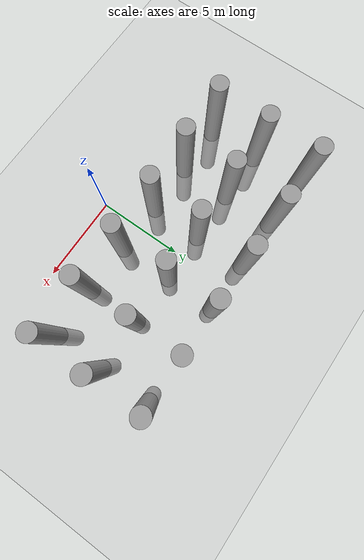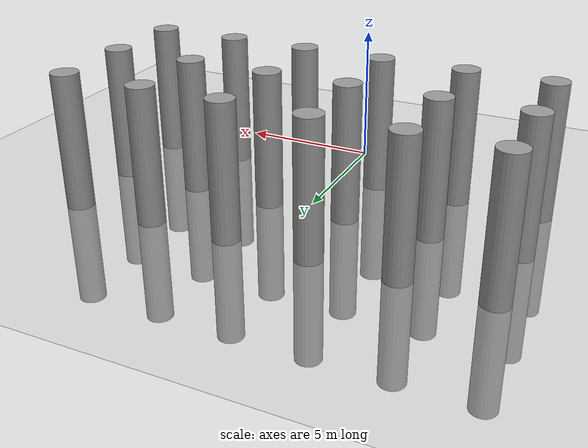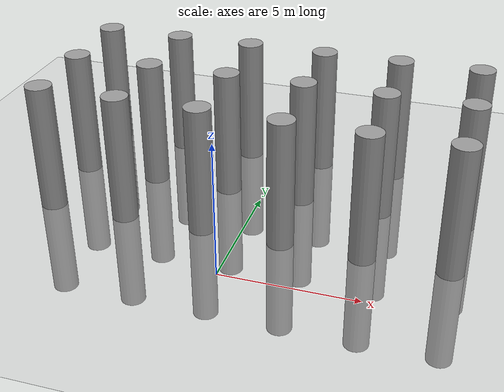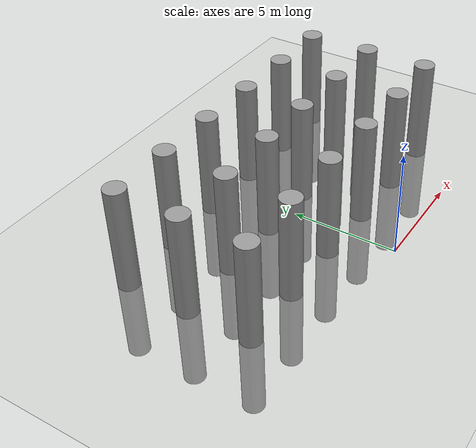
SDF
<sdf version="1.7">
 <world name="default">
  <light name="sun" type="directional">
   <pose>0 0 10 0 -0 0</pose>
   <diffuse>0.8 0.8 0.8 1</diffuse>
   <specular>0.2 0.2 0.2 1</specular>
   <attenuation>
    <range>1000</range>
    <constant>0.9</constant>
    <linear>0.01</linear>
    <quadratic>0.001</quadratic>
   </attenuation>
   <direction>-0.5 0.1 -0.9</direction>
   <spot><inner_angle>0</inner_angle><outer_angle>0</outer_angle><falloff>0</falloff></spot>
  </light>
  <model name="ground_plane">
   <static>1</static>
   <link name="link">
    <collision name="collision">
     <geometry><plane><normal>0 0 1</normal><size>100 100</size></plane></geometry>
     <surface><friction><ode><mu>100</mu><mu2>50</mu2></ode></friction></surface>
    </collision>
    <visual name="visual">
     <cast_shadows>0</cast_shadows>
     <geometry><plane><normal>0 0 1</normal><size>100 100</size></plane></geometry>
     <material>
      <script><uri>file://media/materials/scripts/gazebo.material</uri><name>Gazebo/Grey</name></script>
     </material>
    </visual>
   </link>
  </model>
  <gravity>0 0 -9.8</gravity>
  <magnetic_field>6e-06 2.3e-05 -4.2e-05</magnetic_field>
  <atmosphere type="adiabatic"/>
  <physics type="ode">
   <max_step_size>0.001</max_step_size>
   <real_time_factor>1</real_time_factor>
   <real_time_update_rate>1000</real_time_update_rate>
  </physics>
  <scene><ambient>0.4 0.4 0.4 1</ambient><background>0.7 0.7 0.7 1</background><shadows>1</shadows></scene>
  <spherical_coordinates>
   <surface_model>EARTH_WGS84</surface_model>
   <latitude_deg>0</latitude_deg>
   <longitude_deg>0</longitude_deg>
   <elevation>0</elevation>
   <heading_deg>0</heading_deg>
  </spherical_coordinates>
  <model name="unit_cylinder">
   <link name="link">
    <inertial>
     <mass>8.46118</mass>
     <inertia><ixx>55.4464</ixx><ixy>0</ixy><ixz>0</ixz><iyy>55.4464</iyy><iyz>0</iyz><izz>1.0138</izz></inertia>
    </inertial>
    <visual name="visual">
     <geometry><cylinder><radius>0.489525</radius><length>8.82709</length></cylinder></geometry>
     <material>
      <script><name>Gazebo/Grey</name><uri>file://media/materials/scripts/gazebo.material</uri></script>
      <shader type="pixel"/>
     </material>
    </visual>
    <collision name="collision">
     <geometry><cylinder><radius>0.489525</radius><length>8.82709</length></cylinder></geometry>
     <surface>
      <friction>
       <ode><mu>1</mu><mu2>1</mu2><fdir1>0 0 0</fdir1><slip1>0</slip1><slip2>0</slip2></ode>
       <torsional>
        <coefficient>1</coefficient>
        <patch_radius>0</patch_radius>
        <surface_radius>0</surface_radius>
        <use_patch_radius>1</use_patch_radius>
        <ode><slip>0</slip></ode>
       </torsional>
      </friction>
      <bounce><restitution_coefficient>0</restitution_coefficient><threshold>1e+06</threshold></bounce>
      <contact>
       <collide_without_contact>0</collide_without_contact>
       <collide_without_contact_bitmask>1</collide_without_contact_bitmask>
       <collide_bitmask>1</collide_bitmask>
       <ode>
        <soft_cfm>0</soft_cfm>
        <soft_erp>0.2</soft_erp>
        <kp>1e+13</kp>
        <kd>1</kd>
        <max_vel>0.01</max_vel>
        <min_depth>0</min_depth>
       </ode>
       <bullet>
        <split_impulse>1</split_impulse>
        <split_impulse_penetration_threshold>-0.01</split_impulse_penetration_threshold>
        <soft_cfm>0</soft_cfm>
        <soft_erp>0.2</soft_erp>
        <kp>1e+13</kp>
        <kd>1</kd>
       </bullet>
      </contact>
     </surface>
    </collision>
   </link>
   <static>0</static>
   <pose>1.52088 2.46642 0.499993 -3e-06 -4e-06 -0</pose>
  </model>
  <model name="unit_cylinder_clone">
   <link name="link">
    <inertial>
     <mass>8.46118</mass>
     <inertia><ixx>55.4464</ixx><ixy>0</ixy><ixz>0</ixz><iyy>55.4464</iyy><iyz>0</iyz><izz>1.0138</izz></inertia>
    </inertial>
    <visual name="visual">
     <geometry><cylinder><radius>0.489525</radius><length>8.82709</length></cylinder></geometry>
     <material>
      <script><name>Gazebo/Grey</name><uri>file://media/materials/scripts/gazebo.material</uri></script>
      <shader type="pixel"/>
     </material>
    </visual>
    <collision name="collision">
     <geometry><cylinder><radius>0.489525</radius><length>8.82709</length></cylinder></geometry>
     <surface>
      <friction>
       <ode><mu>1</mu><mu2>1</mu2><fdir1>0 0 0</fdir1><slip1>0</slip1><slip2>0</slip2></ode>
       <torsional>
        <coefficient>1</coefficient>
        <patch_radius>0</patch_radius>
        <surface_radius>0</surface_radius>
        <use_patch_radius>1</use_patch_radius>
        <ode><slip>0</slip></ode>
       </torsional>
      </friction>
      <bounce><restitution_coefficient>0</restitution_coefficient><threshold>1e+06</threshold></bounce>
      <contact>
       <collide_without_contact>0</collide_without_contact>
       <collide_without_contact_bitmask>1</collide_without_contact_bitmask>
       <collide_bitmask>1</collide_bitmask>
       <ode>
        <soft_cfm>0</soft_cfm>
        <soft_erp>0.2</soft_erp>
        <kp>1e+13</kp>
        <kd>1</kd>
        <max_vel>0.01</max_vel>
        <min_depth>0</min_depth>
       </ode>
       <bullet>
        <split_impulse>1</split_impulse>
        <split_impulse_penetration_threshold>-0.01</split_impulse_penetration_threshold>
        <soft_cfm>0</soft_cfm>
        <soft_erp>0.2</soft_erp>
        <kp>1e+13</kp>
        <kd>1</kd>
       </bullet>
      </contact>
     </surface>
    </collision>
   </link>
   <static>0</static>
   <pose>4.49638 2.43032 0.499993 -3e-06 -4e-06 -0</pose>
  </model>
  <model name="unit_cylinder_clone_0">
   <link name="link">
    <inertial>
     <mass>8.46118</mass>
     <inertia><ixx>55.4464</ixx><ixy>0</ixy><ixz>0</ixz><iyy>55.4464</iyy><iyz>0</iyz><izz>1.0138</izz></inertia>
    </inertial>
    <visual name="visual">
     <geometry><cylinder><radius>0.489525</radius><length>8.82709</length></cylinder></geometry>
     <material>
      <script><name>Gazebo/Grey</name><uri>file://media/materials/scripts/gazebo.material</uri></script>
      <shader type="pixel"/>
     </material>
    </visual>
    <collision name="collision">
     <geometry><cylinder><radius>0.489525</radius><length>8.82709</length></cylinder></geometry>
     <surface>
      <friction>
       <ode><mu>1</mu><mu2>1</mu2><fdir1>0 0 0</fdir1><slip1>0</slip1><slip2>0</slip2></ode>
       <torsional>
        <coefficient>1</coefficient>
        <patch_radius>0</patch_radius>
        <surface_radius>0</surface_radius>
        <use_patch_radius>1</use_patch_radius>
        <ode><slip>0</slip></ode>
       </torsional>
      </friction>
      <bounce><restitution_coefficient>0</restitution_coefficient><threshold>1e+06</threshold></bounce>
      <contact>
       <collide_without_contact>0</collide_without_contact>
       <collide_without_contact_bitmask>1</collide_without_contact_bitmask>
       <collide_bitmask>1</collide_bitmask>
       <ode>
        <soft_cfm>0</soft_cfm>
        <soft_erp>0.2</soft_erp>
        <kp>1e+13</kp>
        <kd>1</kd>
        <max_vel>0.01</max_vel>
        <min_depth>0</min_depth>
       </ode>
       <bullet>
        <split_impulse>1</split_impulse>
        <split_impulse_penetration_threshold>-0.01</split_impulse_penetration_threshold>
        <soft_cfm>0</soft_cfm>
        <soft_erp>0.2</soft_erp>
        <kp>1e+13</kp>
        <kd>1</kd>
       </bullet>
      </contact>
     </surface>
    </collision>
   </link>
   <static>0</static>
   <pose>7.53962 2.48599 0.499993 -3e-06 -4e-06 -0</pose>
  </model>
  <model name="unit_cylinder_clone_1">
   <link name="link">
    <inertial>
     <mass>8.46118</mass>
     <inertia><ixx>55.4464</ixx><ixy>0</ixy><ixz>0</ixz><iyy>55.4464</iyy><iyz>0</iyz><izz>1.0138</izz></inertia>
    </inertial>
    <visual name="visual">
     <geometry><cylinder><radius>0.489525</radius><length>8.82709</length></cylinder></geometry>
     <material>
      <script><name>Gazebo/Grey</name><uri>file://media/materials/scripts/gazebo.material</uri></script>
      <shader type="pixel"/>
     </material>
    </visual>
    <collision name="collision">
     <geometry><cylinder><radius>0.489525</radius><length>8.82709</length></cylinder></geometry>
     <surface>
      <friction>
       <ode><mu>1</mu><mu2>1</mu2><fdir1>0 0 0</fdir1><slip1>0</slip1><slip2>0</slip2></ode>
       <torsional>
        <coefficient>1</coefficient>
        <patch_radius>0</patch_radius>
        <surface_radius>0</surface_radius>
        <use_patch_radius>1</use_patch_radius>
        <ode><slip>0</slip></ode>
       </torsional>
      </friction>
      <bounce><restitution_coefficient>0</restitution_coefficient><threshold>1e+06</threshold></bounce>
      <contact>
       <collide_without_contact>0</collide_without_contact>
       <collide_without_contact_bitmask>1</collide_without_contact_bitmask>
       <collide_bitmask>1</collide_bitmask>
       <ode>
        <soft_cfm>0</soft_cfm>
        <soft_erp>0.2</soft_erp>
        <kp>1e+13</kp>
        <kd>1</kd>
        <max_vel>0.01</max_vel>
        <min_depth>0</min_depth>
       </ode>
       <bullet>
        <split_impulse>1</split_impulse>
        <split_impulse_penetration_threshold>-0.01</split_impulse_penetration_threshold>
        <soft_cfm>0</soft_cfm>
        <soft_erp>0.2</soft_erp>
        <kp>1e+13</kp>
        <kd>1</kd>
       </bullet>
      </contact>
     </surface>
    </collision>
   </link>
   <static>0</static>
   <pose>1.4563 5.56209 0.499993 -3e-06 -4e-06 -0</pose>
  </model>
  <model name="unit_cylinder_clone_2">
   <link name="link">
    <inertial>
     <mass>8.46118</mass>
     <inertia><ixx>55.4464</ixx><ixy>0</ixy><ixz>0</ixz><iyy>55.4464</iyy><iyz>0</iyz><izz>1.0138</izz></inertia>
    </inertial>
    <visual name="visual">
     <geometry><cylinder><radius>0.489525</radius><length>8.82709</length></cylinder></geometry>
     <material>
      <script><name>Gazebo/Grey</name><uri>file://media/materials/scripts/gazebo.material</uri></script>
      <shader type="pixel"/>
     </material>
    </visual>
    <collision name="collision">
     <geometry><cylinder><radius>0.489525</radius><length>8.82709</length></cylinder></geometry>
     <surface>
      <friction>
       <ode><mu>1</mu><mu2>1</mu2><fdir1>0 0 0</fdir1><slip1>0</slip1><slip2>0</slip2></ode>
       <torsional>
        <coefficient>1</coefficient>
        <patch_radius>0</patch_radius>
        <surface_radius>0</surface_radius>
        <use_patch_radius>1</use_patch_radius>
        <ode><slip>0</slip></ode>
       </torsional>
      </friction>
      <bounce><restitution_coefficient>0</restitution_coefficient><threshold>1e+06</threshold></bounce>
      <contact>
       <collide_without_contact>0</collide_without_contact>
       <collide_without_contact_bitmask>1</collide_without_contact_bitmask>
       <collide_bitmask>1</collide_bitmask>
       <ode>
        <soft_cfm>0</soft_cfm>
        <soft_erp>0.2</soft_erp>
        <kp>1e+13</kp>
        <kd>1</kd>
        <max_vel>0.01</max_vel>
        <min_depth>0</min_depth>
       </ode>
       <bullet>
        <split_impulse>1</split_impulse>
        <split_impulse_penetration_threshold>-0.01</split_impulse_penetration_threshold>
        <soft_cfm>0</soft_cfm>
        <soft_erp>0.2</soft_erp>
        <kp>1e+13</kp>
        <kd>1</kd>
       </bullet>
      </contact>
     </surface>
    </collision>
   </link>
   <static>0</static>
   <pose>4.47715 5.53278 0.499993 -3e-06 -4e-06 -0</pose>
  </model>
  <model name="unit_cylinder_clone_3">
   <link name="link">
    <inertial>
     <mass>8.46118</mass>
     <inertia><ixx>55.4464</ixx><ixy>0</ixy><ixz>0</ixz><iyy>55.4464</iyy><iyz>0</iyz><izz>1.0138</izz></inertia>
    </inertial>
    <visual name="visual">
     <geometry><cylinder><radius>0.489525</radius><length>8.82709</length></cylinder></geometry>
     <material>
      <script><name>Gazebo/Grey</name><uri>file://media/materials/scripts/gazebo.material</uri></script>
      <shader type="pixel"/>
     </material>
    </visual>
    <collision name="collision">
     <geometry><cylinder><radius>0.489525</radius><length>8.82709</length></cylinder></geometry>
     <surface>
      <friction>
       <ode><mu>1</mu><mu2>1</mu2><fdir1>0 0 0</fdir1><slip1>0</slip1><slip2>0</slip2></ode>
       <torsional>
        <coefficient>1</coefficient>
        <patch_radius>0</patch_radius>
        <surface_radius>0</surface_radius>
        <use_patch_radius>1</use_patch_radius>
        <ode><slip>0</slip></ode>
       </torsional>
      </friction>
      <bounce><restitution_coefficient>0</restitution_coefficient><threshold>1e+06</threshold></bounce>
      <contact>
       <collide_without_contact>0</collide_without_contact>
       <collide_without_contact_bitmask>1</collide_without_contact_bitmask>
       <collide_bitmask>1</collide_bitmask>
       <ode>
        <soft_cfm>0</soft_cfm>
        <soft_erp>0.2</soft_erp>
        <kp>1e+13</kp>
        <kd>1</kd>
        <max_vel>0.01</max_vel>
        <min_depth>0</min_depth>
       </ode>
       <bullet>
        <split_impulse>1</split_impulse>
        <split_impulse_penetration_threshold>-0.01</split_impulse_penetration_threshold>
        <soft_cfm>0</soft_cfm>
        <soft_erp>0.2</soft_erp>
        <kp>1e+13</kp>
        <kd>1</kd>
       </bullet>
      </contact>
     </surface>
    </collision>
   </link>
   <static>0</static>
   <pose>7.56768 5.51359 0.499993 -3e-06 -4e-06 -0</pose>
  </model>
  <model name="unit_cylinder_clone_4">
   <link name="link">
    <inertial>
     <mass>8.46118</mass>
     <inertia><ixx>55.4464</ixx><ixy>0</ixy><ixz>0</ixz><iyy>55.4464</iyy><iyz>0</iyz><izz>1.0138</izz></inertia>
    </inertial>
    <visual name="visual">
     <geometry><cylinder><radius>0.489525</radius><length>8.82709</length></cylinder></geometry>
     <material>
      <script><name>Gazebo/Grey</name><uri>file://media/materials/scripts/gazebo.material</uri></script>
      <shader type="pixel"/>
     </material>
    </visual>
    <collision name="collision">
     <geometry><cylinder><radius>0.489525</radius><length>8.82709</length></cylinder></geometry>
     <surface>
      <friction>
       <ode><mu>1</mu><mu2>1</mu2><fdir1>0 0 0</fdir1><slip1>0</slip1><slip2>0</slip2></ode>
       <torsional>
        <coefficient>1</coefficient>
        <patch_radius>0</patch_radius>
        <surface_radius>0</surface_radius>
        <use_patch_radius>1</use_patch_radius>
        <ode><slip>0</slip></ode>
       </torsional>
      </friction>
      <bounce><restitution_coefficient>0</restitution_coefficient><threshold>1e+06</threshold></bounce>
      <contact>
       <collide_without_contact>0</collide_without_contact>
       <collide_without_contact_bitmask>1</collide_without_contact_bitmask>
       <collide_bitmask>1</collide_bitmask>
       <ode>
        <soft_cfm>0</soft_cfm>
        <soft_erp>0.2</soft_erp>
        <kp>1e+13</kp>
        <kd>1</kd>
        <max_vel>0.01</max_vel>
        <min_depth>0</min_depth>
       </ode>
       <bullet>
        <split_impulse>1</split_impulse>
        <split_impulse_penetration_threshold>-0.01</split_impulse_penetration_threshold>
        <soft_cfm>0</soft_cfm>
        <soft_erp>0.2</soft_erp>
        <kp>1e+13</kp>
        <kd>1</kd>
       </bullet>
      </contact>
     </surface>
    </collision>
   </link>
   <static>0</static>
   <pose>-1.46926 2.52501 0.499993 -3e-06 -4e-06 -0</pose>
  </model>
  <model name="unit_cylinder_clone_5">
   <link name="link">
    <inertial>
     <mass>8.46118</mass>
     <inertia><ixx>55.4464</ixx><ixy>0</ixy><ixz>0</ixz><iyy>55.4464</iyy><iyz>0</iyz><izz>1.0138</izz></inertia>
    </inertial>
    <visual name="visual">
     <geometry><cylinder><radius>0.489525</radius><length>8.82709</length></cylinder></geometry>
     <material>
      <script><name>Gazebo/Grey</name><uri>file://media/materials/scripts/gazebo.material</uri></script>
      <shader type="pixel"/>
     </material>
    </visual>
    <collision name="collision">
     <geometry><cylinder><radius>0.489525</radius><length>8.82709</length></cylinder></geometry>
     <surface>
      <friction>
       <ode><mu>1</mu><mu2>1</mu2><fdir1>0 0 0</fdir1><slip1>0</slip1><slip2>0</slip2></ode>
       <torsional>
        <coefficient>1</coefficient>
        <patch_radius>0</patch_radius>
        <surface_radius>0</surface_radius>
        <use_patch_radius>1</use_patch_radius>
        <ode><slip>0</slip></ode>
       </torsional>
      </friction>
      <bounce><restitution_coefficient>0</restitution_coefficient><threshold>1e+06</threshold></bounce>
      <contact>
       <collide_without_contact>0</collide_without_contact>
       <collide_without_contact_bitmask>1</collide_without_contact_bitmask>
       <collide_bitmask>1</collide_bitmask>
       <ode>
        <soft_cfm>0</soft_cfm>
        <soft_erp>0.2</soft_erp>
        <kp>1e+13</kp>
        <kd>1</kd>
        <max_vel>0.01</max_vel>
        <min_depth>0</min_depth>
       </ode>
       <bullet>
        <split_impulse>1</split_impulse>
        <split_impulse_penetration_threshold>-0.01</split_impulse_penetration_threshold>
        <soft_cfm>0</soft_cfm>
        <soft_erp>0.2</soft_erp>
        <kp>1e+13</kp>
        <kd>1</kd>
       </bullet>
      </contact>
     </surface>
    </collision>
   </link>
   <static>0</static>
   <pose>-4.51861 2.4984 0.499993 -3e-06 -4e-06 -0</pose>
  </model>
  <model name="unit_cylinder_clone_6">
   <link name="link">
    <inertial>
     <mass>8.46118</mass>
     <inertia><ixx>55.4464</ixx><ixy>0</ixy><ixz>0</ixz><iyy>55.4464</iyy><iyz>0</iyz><izz>1.0138</izz></inertia>
    </inertial>
    <visual name="visual">
     <geometry><cylinder><radius>0.489525</radius><length>8.82709</length></cylinder></geometry>
     <material>
      <script><name>Gazebo/Grey</name><uri>file://media/materials/scripts/gazebo.material</uri></script>
      <shader type="pixel"/>
     </material>
    </visual>
    <collision name="collision">
     <geometry><cylinder><radius>0.489525</radius><length>8.82709</length></cylinder></geometry>
     <surface>
      <friction>
       <ode><mu>1</mu><mu2>1</mu2><fdir1>0 0 0</fdir1><slip1>0</slip1><slip2>0</slip2></ode>
       <torsional>
        <coefficient>1</coefficient>
        <patch_radius>0</patch_radius>
        <surface_radius>0</surface_radius>
        <use_patch_radius>1</use_patch_radius>
        <ode><slip>0</slip></ode>
       </torsional>
      </friction>
      <bounce><restitution_coefficient>0</restitution_coefficient><threshold>1e+06</threshold></bounce>
      <contact>
       <collide_without_contact>0</collide_without_contact>
       <collide_without_contact_bitmask>1</collide_without_contact_bitmask>
       <collide_bitmask>1</collide_bitmask>
       <ode>
        <soft_cfm>0</soft_cfm>
        <soft_erp>0.2</soft_erp>
        <kp>1e+13</kp>
        <kd>1</kd>
        <max_vel>0.01</max_vel>
        <min_depth>0</min_depth>
       </ode>
       <bullet>
        <split_impulse>1</split_impulse>
        <split_impulse_penetration_threshold>-0.01</split_impulse_penetration_threshold>
        <soft_cfm>0</soft_cfm>
        <soft_erp>0.2</soft_erp>
        <kp>1e+13</kp>
        <kd>1</kd>
       </bullet>
      </contact>
     </surface>
    </collision>
   </link>
   <static>0</static>
   <pose>-7.48598 2.50105 0.499993 -3e-06 -4e-06 -0</pose>
  </model>
  <model name="unit_cylinder_clone_7">
   <link name="link">
    <inertial>
     <mass>8.46118</mass>
     <inertia><ixx>55.4464</ixx><ixy>0</ixy><ixz>0</ixz><iyy>55.4464</iyy><iyz>0</iyz><izz>1.0138</izz></inertia>
    </inertial>
    <visual name="visual">
     <geometry><cylinder><radius>0.489525</radius><length>8.82709</length></cylinder></geometry>
     <material>
      <script><name>Gazebo/Grey</name><uri>file://media/materials/scripts/gazebo.material</uri></script>
      <shader type="pixel"/>
     </material>
    </visual>
    <collision name="collision">
     <geometry><cylinder><radius>0.489525</radius><length>8.82709</length></cylinder></geometry>
     <surface>
      <friction>
       <ode><mu>1</mu><mu2>1</mu2><fdir1>0 0 0</fdir1><slip1>0</slip1><slip2>0</slip2></ode>
       <torsional>
        <coefficient>1</coefficient>
        <patch_radius>0</patch_radius>
        <surface_radius>0</surface_radius>
        <use_patch_radius>1</use_patch_radius>
        <ode><slip>0</slip></ode>
       </torsional>
      </friction>
      <bounce><restitution_coefficient>0</restitution_coefficient><threshold>1e+06</threshold></bounce>
      <contact>
       <collide_without_contact>0</collide_without_contact>
       <collide_without_contact_bitmask>1</collide_without_contact_bitmask>
       <collide_bitmask>1</collide_bitmask>
       <ode>
        <soft_cfm>0</soft_cfm>
        <soft_erp>0.2</soft_erp>
        <kp>1e+13</kp>
        <kd>1</kd>
        <max_vel>0.01</max_vel>
        <min_depth>0</min_depth>
       </ode>
       <bullet>
        <split_impulse>1</split_impulse>
        <split_impulse_penetration_threshold>-0.01</split_impulse_penetration_threshold>
        <soft_cfm>0</soft_cfm>
        <soft_erp>0.2</soft_erp>
        <kp>1e+13</kp>
        <kd>1</kd>
       </bullet>
      </contact>
     </surface>
    </collision>
   </link>
   <static>0</static>
   <pose>-7.50864 5.50155 0.499993 -3e-06 -4e-06 -0</pose>
  </model>
  <model name="unit_cylinder_clone_8">
   <link name="link">
    <inertial>
     <mass>8.46118</mass>
     <inertia><ixx>55.4464</ixx><ixy>0</ixy><ixz>0</ixz><iyy>55.4464</iyy><iyz>0</iyz><izz>1.0138</izz></inertia>
    </inertial>
    <visual name="visual">
     <geometry><cylinder><radius>0.489525</radius><length>8.82709</length></cylinder></geometry>
     <material>
      <script><name>Gazebo/Grey</name><uri>file://media/materials/scripts/gazebo.material</uri></script>
      <shader type="pixel"/>
     </material>
    </visual>
    <collision name="collision">
     <geometry><cylinder><radius>0.489525</radius><length>8.82709</length></cylinder></geometry>
     <surface>
      <friction>
       <ode><mu>1</mu><mu2>1</mu2><fdir1>0 0 0</fdir1><slip1>0</slip1><slip2>0</slip2></ode>
       <torsional>
        <coefficient>1</coefficient>
        <patch_radius>0</patch_radius>
        <surface_radius>0</surface_radius>
        <use_patch_radius>1</use_patch_radius>
        <ode><slip>0</slip></ode>
       </torsional>
      </friction>
      <bounce><restitution_coefficient>0</restitution_coefficient><threshold>1e+06</threshold></bounce>
      <contact>
       <collide_without_contact>0</collide_without_contact>
       <collide_without_contact_bitmask>1</collide_without_contact_bitmask>
       <collide_bitmask>1</collide_bitmask>
       <ode>
        <soft_cfm>0</soft_cfm>
        <soft_erp>0.2</soft_erp>
        <kp>1e+13</kp>
        <kd>1</kd>
        <max_vel>0.01</max_vel>
        <min_depth>0</min_depth>
       </ode>
       <bullet>
        <split_impulse>1</split_impulse>
        <split_impulse_penetration_threshold>-0.01</split_impulse_penetration_threshold>
        <soft_cfm>0</soft_cfm>
        <soft_erp>0.2</soft_erp>
        <kp>1e+13</kp>
        <kd>1</kd>
       </bullet>
      </contact>
     </surface>
    </collision>
   </link>
   <static>0</static>
   <pose>-4.50872 5.48969 0.499993 -3e-06 -4e-06 -0</pose>
  </model>
  <model name="unit_cylinder_clone_9">
   <link name="link">
    <inertial>
     <mass>8.46118</mass>
     <inertia><ixx>55.4464</ixx><ixy>0</ixy><ixz>0</ixz><iyy>55.4464</iyy><iyz>0</iyz><izz>1.0138</izz></inertia>
    </inertial>
    <visual name="visual">
     <geometry><cylinder><radius>0.489525</radius><length>8.82709</length></cylinder></geometry>
     <material>
      <script><name>Gazebo/Grey</name><uri>file://media/materials/scripts/gazebo.material</uri></script>
      <shader type="pixel"/>
     </material>
    </visual>
    <collision name="collision">
     <geometry><cylinder><radius>0.489525</radius><length>8.82709</length></cylinder></geometry>
     <surface>
      <friction>
       <ode><mu>1</mu><mu2>1</mu2><fdir1>0 0 0</fdir1><slip1>0</slip1><slip2>0</slip2></ode>
       <torsional>
        <coefficient>1</coefficient>
        <patch_radius>0</patch_radius>
        <surface_radius>0</surface_radius>
        <use_patch_radius>1</use_patch_radius>
        <ode><slip>0</slip></ode>
       </torsional>
      </friction>
      <bounce><restitution_coefficient>0</restitution_coefficient><threshold>1e+06</threshold></bounce>
      <contact>
       <collide_without_contact>0</collide_without_contact>
       <collide_without_contact_bitmask>1</collide_without_contact_bitmask>
       <collide_bitmask>1</collide_bitmask>
       <ode>
        <soft_cfm>0</soft_cfm>
        <soft_erp>0.2</soft_erp>
        <kp>1e+13</kp>
        <kd>1</kd>
        <max_vel>0.01</max_vel>
        <min_depth>0</min_depth>
       </ode>
       <bullet>
        <split_impulse>1</split_impulse>
        <split_impulse_penetration_threshold>-0.01</split_impulse_penetration_threshold>
        <soft_cfm>0</soft_cfm>
        <soft_erp>0.2</soft_erp>
        <kp>1e+13</kp>
        <kd>1</kd>
       </bullet>
      </contact>
     </surface>
    </collision>
   </link>
   <static>0</static>
   <pose>-1.46484 5.52597 0.499993 -3e-06 -4e-06 -0</pose>
  </model>
  <model name="unit_cylinder_clone_10">
   <link name="link">
    <inertial>
     <mass>8.46118</mass>
     <inertia><ixx>55.4464</ixx><ixy>0</ixy><ixz>0</ixz><iyy>55.4464</iyy><iyz>0</iyz><izz>1.0138</izz></inertia>
    </inertial>
    <visual name="visual">
     <geometry><cylinder><radius>0.489525</radius><length>8.82709</length></cylinder></geometry>
     <material>
      <script><name>Gazebo/Grey</name><uri>file://media/materials/scripts/gazebo.material</uri></script>
      <shader type="pixel"/>
     </material>
    </visual>
    <collision name="collision">
     <geometry><cylinder><radius>0.489525</radius><length>8.82709</length></cylinder></geometry>
     <surface>
      <friction>
       <ode><mu>1</mu><mu2>1</mu2><fdir1>0 0 0</fdir1><slip1>0</slip1><slip2>0</slip2></ode>
       <torsional>
        <coefficient>1</coefficient>
        <patch_radius>0</patch_radius>
        <surface_radius>0</surface_radius>
        <use_patch_radius>1</use_patch_radius>
        <ode><slip>0</slip></ode>
       </torsional>
      </friction>
      <bounce><restitution_coefficient>0</restitution_coefficient><threshold>1e+06</threshold></bounce>
      <contact>
       <collide_without_contact>0</collide_without_contact>
       <collide_without_contact_bitmask>1</collide_without_contact_bitmask>
       <collide_bitmask>1</collide_bitmask>
       <ode>
        <soft_cfm>0</soft_cfm>
        <soft_erp>0.2</soft_erp>
        <kp>1e+13</kp>
        <kd>1</kd>
        <max_vel>0.01</max_vel>
        <min_depth>0</min_depth>
       </ode>
       <bullet>
        <split_impulse>1</split_impulse>
        <split_impulse_penetration_threshold>-0.01</split_impulse_penetration_threshold>
        <soft_cfm>0</soft_cfm>
        <soft_erp>0.2</soft_erp>
        <kp>1e+13</kp>
        <kd>1</kd>
       </bullet>
      </contact>
     </surface>
    </collision>
   </link>
   <static>0</static>
   <pose>-7.50325 8.53252 0.499993 -3e-06 -4e-06 -0</pose>
  </model>
  <model name="unit_cylinder_clone_11">
   <link name="link">
    <inertial>
     <mass>8.46118</mass>
     <inertia><ixx>55.4464</ixx><ixy>0</ixy><ixz>0</ixz><iyy>55.4464</iyy><iyz>0</iyz><izz>1.0138</izz></inertia>
    </inertial>
    <visual name="visual">
     <geometry><cylinder><radius>0.489525</radius><length>8.82709</length></cylinder></geometry>
     <material>
      <script><name>Gazebo/Grey</name><uri>file://media/materials/scripts/gazebo.material</uri></script>
      <shader type="pixel"/>
     </material>
    </visual>
    <collision name="collision">
     <geometry><cylinder><radius>0.489525</radius><length>8.82709</length></cylinder></geometry>
     <surface>
      <friction>
       <ode><mu>1</mu><mu2>1</mu2><fdir1>0 0 0</fdir1><slip1>0</slip1><slip2>0</slip2></ode>
       <torsional>
        <coefficient>1</coefficient>
        <patch_radius>0</patch_radius>
        <surface_radius>0</surface_radius>
        <use_patch_radius>1</use_patch_radius>
        <ode><slip>0</slip></ode>
       </torsional>
      </friction>
      <bounce><restitution_coefficient>0</restitution_coefficient><threshold>1e+06</threshold></bounce>
      <contact>
       <collide_without_contact>0</collide_without_contact>
       <collide_without_contact_bitmask>1</collide_without_contact_bitmask>
       <collide_bitmask>1</collide_bitmask>
       <ode>
        <soft_cfm>0</soft_cfm>
        <soft_erp>0.2</soft_erp>
        <kp>1e+13</kp>
        <kd>1</kd>
        <max_vel>0.01</max_vel>
        <min_depth>0</min_depth>
       </ode>
       <bullet>
        <split_impulse>1</split_impulse>
        <split_impulse_penetration_threshold>-0.01</split_impulse_penetration_threshold>
        <soft_cfm>0</soft_cfm>
        <soft_erp>0.2</soft_erp>
        <kp>1e+13</kp>
        <kd>1</kd>
       </bullet>
      </contact>
     </surface>
    </collision>
   </link>
   <static>0</static>
   <pose>-4.48411 8.51651 0.499993 -3e-06 -4e-06 -0</pose>
  </model>
  <model name="unit_cylinder_clone_12">
   <link name="link">
    <inertial>
     <mass>8.46118</mass>
     <inertia><ixx>55.4464</ixx><ixy>0</ixy><ixz>0</ixz><iyy>55.4464</iyy><iyz>0</iyz><izz>1.0138</izz></inertia>
    </inertial>
    <visual name="visual">
     <geometry><cylinder><radius>0.489525</radius><length>8.82709</length></cylinder></geometry>
     <material>
      <script><name>Gazebo/Grey</name><uri>file://media/materials/scripts/gazebo.material</uri></script>
      <shader type="pixel"/>
     </material>
    </visual>
    <collision name="collision">
     <geometry><cylinder><radius>0.489525</radius><length>8.82709</length></cylinder></geometry>
     <surface>
      <friction>
       <ode><mu>1</mu><mu2>1</mu2><fdir1>0 0 0</fdir1><slip1>0</slip1><slip2>0</slip2></ode>
       <torsional>
        <coefficient>1</coefficient>
        <patch_radius>0</patch_radius>
        <surface_radius>0</surface_radius>
        <use_patch_radius>1</use_patch_radius>
        <ode><slip>0</slip></ode>
       </torsional>
      </friction>
      <bounce><restitution_coefficient>0</restitution_coefficient><threshold>1e+06</threshold></bounce>
      <contact>
       <collide_without_contact>0</collide_without_contact>
       <collide_without_contact_bitmask>1</collide_without_contact_bitmask>
       <collide_bitmask>1</collide_bitmask>
       <ode>
        <soft_cfm>0</soft_cfm>
        <soft_erp>0.2</soft_erp>
        <kp>1e+13</kp>
        <kd>1</kd>
        <max_vel>0.01</max_vel>
        <min_depth>0</min_depth>
       </ode>
       <bullet>
        <split_impulse>1</split_impulse>
        <split_impulse_penetration_threshold>-0.01</split_impulse_penetration_threshold>
        <soft_cfm>0</soft_cfm>
        <soft_erp>0.2</soft_erp>
        <kp>1e+13</kp>
        <kd>1</kd>
       </bullet>
      </contact>
     </surface>
    </collision>
   </link>
   <static>0</static>
   <pose>-1.50936 8.56138 0.499993 -3e-06 -4e-06 -0</pose>
  </model>
  <model name="unit_cylinder_clone_13">
   <link name="link">
    <inertial>
     <mass>8.46118</mass>
     <inertia><ixx>55.4464</ixx><ixy>0</ixy><ixz>0</ixz><iyy>55.4464</iyy><iyz>0</iyz><izz>1.0138</izz></inertia>
    </inertial>
    <visual name="visual">
     <geometry><cylinder><radius>0.489525</radius><length>8.82709</length></cylinder></geometry>
     <material>
      <script><name>Gazebo/Grey</name><uri>file://media/materials/scripts/gazebo.material</uri></script>
      <shader type="pixel"/>
     </material>
    </visual>
    <collision name="collision">
     <geometry><cylinder><radius>0.489525</radius><length>8.82709</length></cylinder></geometry>
     <surface>
      <friction>
       <ode><mu>1</mu><mu2>1</mu2><fdir1>0 0 0</fdir1><slip1>0</slip1><slip2>0</slip2></ode>
       <torsional>
        <coefficient>1</coefficient>
        <patch_radius>0</patch_radius>
        <surface_radius>0</surface_radius>
        <use_patch_radius>1</use_patch_radius>
        <ode><slip>0</slip></ode>
       </torsional>
      </friction>
      <bounce><restitution_coefficient>0</restitution_coefficient><threshold>1e+06</threshold></bounce>
      <contact>
       <collide_without_contact>0</collide_without_contact>
       <collide_without_contact_bitmask>1</collide_without_contact_bitmask>
       <collide_bitmask>1</collide_bitmask>
       <ode>
        <soft_cfm>0</soft_cfm>
        <soft_erp>0.2</soft_erp>
        <kp>1e+13</kp>
        <kd>1</kd>
        <max_vel>0.01</max_vel>
        <min_depth>0</min_depth>
       </ode>
       <bullet>
        <split_impulse>1</split_impulse>
        <split_impulse_penetration_threshold>-0.01</split_impulse_penetration_threshold>
        <soft_cfm>0</soft_cfm>
        <soft_erp>0.2</soft_erp>
        <kp>1e+13</kp>
        <kd>1</kd>
       </bullet>
      </contact>
     </surface>
    </collision>
   </link>
   <static>0</static>
   <pose>1.50743 8.54429 0.499993 -3e-06 -4e-06 -0</pose>
  </model>
  <model name="unit_cylinder_clone_14">
   <link name="link">
    <inertial>
     <mass>8.46118</mass>
     <inertia><ixx>55.4464</ixx><ixy>0</ixy><ixz>0</ixz><iyy>55.4464</iyy><iyz>0</iyz><izz>1.0138</izz></inertia>
    </inertial>
    <visual name="visual">
     <geometry><cylinder><radius>0.489525</radius><length>8.82709</length></cylinder></geometry>
     <material>
      <script><name>Gazebo/Grey</name><uri>file://media/materials/scripts/gazebo.material</uri></script>
      <shader type="pixel"/>
     </material>
    </visual>
    <collision name="collision">
     <geometry><cylinder><radius>0.489525</radius><length>8.82709</length></cylinder></geometry>
     <surface>
      <friction>
       <ode><mu>1</mu><mu2>1</mu2><fdir1>0 0 0</fdir1><slip1>0</slip1><slip2>0</slip2></ode>
       <torsional>
        <coefficient>1</coefficient>
        <patch_radius>0</patch_radius>
        <surface_radius>0</surface_radius>
        <use_patch_radius>1</use_patch_radius>
        <ode><slip>0</slip></ode>
       </torsional>
      </friction>
      <bounce><restitution_coefficient>0</restitution_coefficient><threshold>1e+06</threshold></bounce>
      <contact>
       <collide_without_contact>0</collide_without_contact>
       <collide_without_contact_bitmask>1</collide_without_contact_bitmask>
       <collide_bitmask>1</collide_bitmask>
       <ode>
        <soft_cfm>0</soft_cfm>
        <soft_erp>0.2</soft_erp>
        <kp>1e+13</kp>
        <kd>1</kd>
        <max_vel>0.01</max_vel>
        <min_depth>0</min_depth>
       </ode>
       <bullet>
        <split_impulse>1</split_impulse>
        <split_impulse_penetration_threshold>-0.01</split_impulse_penetration_threshold>
        <soft_cfm>0</soft_cfm>
        <soft_erp>0.2</soft_erp>
        <kp>1e+13</kp>
        <kd>1</kd>
       </bullet>
      </contact>
     </surface>
    </collision>
   </link>
   <static>0</static>
   <pose>4.4683 8.55172 0.499993 -3e-06 -4e-06 -0</pose>
  </model>
  <model name="unit_cylinder_clone_15">
   <link name="link">
    <inertial>
     <mass>8.46118</mass>
     <inertia><ixx>55.4464</ixx><ixy>0</ixy><ixz>0</ixz><iyy>55.4464</iyy><iyz>0</iyz><izz>1.0138</izz></inertia>
    </inertial>
    <visual name="visual">
     <geometry><cylinder><radius>0.489525</radius><length>8.82709</length></cylinder></geometry>
     <material>
      <script><name>Gazebo/Grey</name><uri>file://media/materials/scripts/gazebo.material</uri></script>
      <shader type="pixel"/>
     </material>
    </visual>
    <collision name="collision">
     <geometry><cylinder><radius>0.489525</radius><length>8.82709</length></cylinder></geometry>
     <surface>
      <friction>
       <ode><mu>1</mu><mu2>1</mu2><fdir1>0 0 0</fdir1><slip1>0</slip1><slip2>0</slip2></ode>
       <torsional>
        <coefficient>1</coefficient>
        <patch_radius>0</patch_radius>
        <surface_radius>0</surface_radius>
        <use_patch_radius>1</use_patch_radius>
        <ode><slip>0</slip></ode>
       </torsional>
      </friction>
      <bounce><restitution_coefficient>0</restitution_coefficient><threshold>1e+06</threshold></bounce>
      <contact>
       <collide_without_contact>0</collide_without_contact>
       <collide_without_contact_bitmask>1</collide_without_contact_bitmask>
       <collide_bitmask>1</collide_bitmask>
       <ode>
        <soft_cfm>0</soft_cfm>
        <soft_erp>0.2</soft_erp>
        <kp>1e+13</kp>
        <kd>1</kd>
        <max_vel>0.01</max_vel>
        <min_depth>0</min_depth>
       </ode>
       <bullet>
        <split_impulse>1</split_impulse>
        <split_impulse_penetration_threshold>-0.01</split_impulse_penetration_threshold>
        <soft_cfm>0</soft_cfm>
        <soft_erp>0.2</soft_erp>
        <kp>1e+13</kp>
        <kd>1</kd>
       </bullet>
      </contact>
     </surface>
    </collision>
   </link>
   <static>0</static>
   <pose>7.49114 8.5728 0.499993 -3e-06 -4e-06 -0</pose>
  </model>
 </world>
</sdf>
